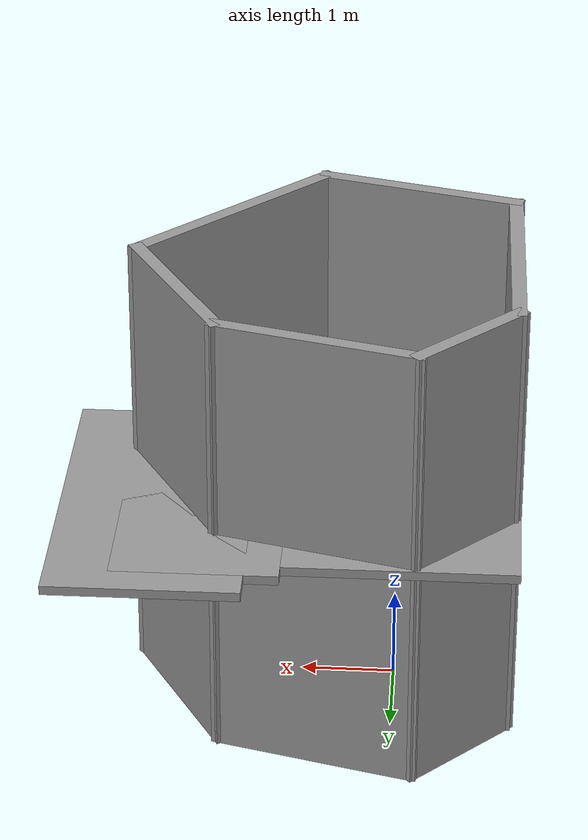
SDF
<?xml version='1.0'?>
<sdf version='1.6'>
  <model name='holes1'>
    <pose frame=''>0.755403 0.416373 0 0 -0 0</pose>
    <link name='Floor_0'>
      <pose frame=''>0 -0.47582 2.5 0 -0 0</pose>
      <visual name='Floor_0_Visual_0'>
        <pose frame=''>-0.857102 0 0.05 0 -0 0</pose>
        <geometry>
          <box>
            <size>2.40597 4.19628 0.1</size>
          </box>
        </geometry>
        <material>
          <script>
            <uri>file://media/materials/scripts/gazebo.material</uri>
            <name>Gazebo/Grey</name>
          </script>
          <ambient>1 1 1 1</ambient>
        </material>
        <meta>
          <layer>1</layer>
        </meta>
      </visual>
      <collision name='Floor_0_Collision_0'>
        <geometry>
          <box>
            <size>2.40597 4.19628 0.1</size>
          </box>
        </geometry>
        <pose frame=''>-0.857102 0 0.05 0 -0 0</pose>
      </collision>
      <visual name='Floor_0_Visual_1'>
        <pose frame=''>1.20298 -1.27418 0.05 0 -0 0</pose>
        <geometry>
          <box>
            <size>1.7142 2.64792 0.1</size>
          </box>
        </geometry>
        <material>
          <script>
            <uri>file://media/materials/scripts/gazebo.material</uri>
            <name>Gazebo/Grey</name>
          </script>
          <ambient>1 1 1 1</ambient>
        </material>
        <meta>
          <layer>1</layer>
        </meta>
      </visual>
      <collision name='Floor_0_Collision_1'>
        <geometry>
          <box>
            <size>1.7142 2.64792 0.1</size>
          </box>
        </geometry>
        <pose frame=''>1.20298 -1.27418 0.05 0 -0 0</pose>
      </collision>
	<visual name='Floor_0_Visual_3'>
        <pose frame=''>1.20298 1.27418 0.05 0 -0 0</pose>
        <geometry>
          <box>
            <size>1.7142 2 0.1</size>
          </box>
        </geometry>
        <material>
          <script>
            <uri>file://media/materials/scripts/gazebo.material</uri>
            <name>Gazebo/Grey</name>
          </script>
          <ambient>1 1 1 1</ambient>
        </material>
        <meta>
          <layer>1</layer>
        </meta>
      </visual>
      <collision name='Floor_0_Collision_3'>
        <geometry>
          <box>
            <size>1.7142 2 0.1</size>
          </box>
        </geometry>
        <pose frame=''>1.20298 1.27418 0.05 0 -0 0</pose>
      </collision>
      <visual name='Floor_0_Visual_2'>
        <pose frame=''>1.70298 0.823959 0.05 0 -0 0</pose>
        <geometry>
          <box>
            <size>2 3.54836 0.1</size>
          </box>
        </geometry>
        <material>
          <script>
            <uri>file://media/materials/scripts/gazebo.material</uri>
            <name>Gazebo/Grey</name>
          </script>
          <ambient>1 1 1 1</ambient>
        </material>
        <meta>
          <layer>1</layer>
        </meta>
      </visual>
      <collision name='Floor_0_Collision_2'>
        <geometry>
          <box>
            <size>1.714205 3.54836 0.1</size>
          </box>
        </geometry>
        <pose frame=''>2 0.823959 0.05 0 -0 0</pose>
      </collision>
    </link>

    <link name='Wall_0'>
      <collision name='Wall_0_Collision'>
        <geometry>
          <box>
            <size>2.25 0.15 2.5</size>
          </box>
        </geometry>
        <pose frame=''>0 0 1.25 0 -0 0</pose>
      </collision>
      <visual name='Wall_0_Visual'>
        <pose frame=''>0 0 1.25 0 -0 0</pose>
        <geometry>
          <box>
            <size>2.25 0.15 2.5</size>
          </box>
        </geometry>
        <material>
          <script>
            <uri>file://media/materials/scripts/gazebo.material</uri>
            <name>Gazebo/Grey</name>
          </script>
          <ambient>1 1 1 1</ambient>
        </material>
        <meta>
          <layer>0</layer>
        </meta>
      </visual>
      <pose frame=''>-0.89868 -2.19613 0 0 -0 -0.261799</pose>
    </link>
    <link name='Wall_1'>
      <collision name='Wall_1_Collision'>
        <geometry>
          <box>
            <size>2.75 0.15 2.5</size>
          </box>
        </geometry>
        <pose frame=''>0 0 1.25 0 -0 0</pose>
      </collision>
      <visual name='Wall_1_Visual'>
        <pose frame=''>0 0 1.25 0 -0 0</pose>
        <geometry>
          <box>
            <size>2.75 0.15 2.5</size>
          </box>
        </geometry>
        <material>
          <script>
            <uri>file://media/materials/scripts/gazebo.material</uri>
            <name>Gazebo/Grey</name>
          </script>
          <ambient>1 1 1 1</ambient>
        </material>
        <meta>
          <layer>0</layer>
        </meta>
      </visual>
      <pose frame=''>1.03478 -1.54865 0 0 -0 0.785398</pose>
    </link>
    <link name='Wall_10'>
      <collision name='Wall_10_Collision'>
        <geometry>
          <box>
            <size>2.25 0.15 2.5</size>
          </box>
        </geometry>
        <pose frame=''>0 0 1.25 0 -0 0</pose>
      </collision>
      <visual name='Wall_10_Visual'>
        <pose frame=''>0 0 1.25 0 -0 0</pose>
        <geometry>
          <box>
            <size>2.25 0.15 2.5</size>
          </box>
        </geometry>
        <material>
          <script>
            <uri>file://media/materials/scripts/gazebo.material</uri>
            <name>Gazebo/Grey</name>
          </script>
          <ambient>1 1 1 1</ambient>
        </material>
        <meta>
          <layer>1</layer>
        </meta>
      </visual>
      <pose frame=''>0.014797 1.24449 2.5 0 -0 2.87979</pose>
    </link>
    <link name='Wall_11'>
      <collision name='Wall_11_Collision'>
        <geometry>
          <box>
            <size>1.5 0.15 2.5</size>
          </box>
        </geometry>
        <pose frame=''>0 0 1.25 0 -0 0</pose>
      </collision>
      <visual name='Wall_11_Visual'>
        <pose frame=''>0 0 1.25 0 -0 0</pose>
        <geometry>
          <box>
            <size>1.5 0.15 2.5</size>
          </box>
        </geometry>
        <material>
          <script>
            <uri>file://media/materials/scripts/gazebo.material</uri>
            <name>Gazebo/Grey</name>
          </script>
          <ambient>1 1 1 1</ambient>
        </material>
        <meta>
          <layer>1</layer>
        </meta>
      </visual>
      <pose frame=''>-1.47672 1.03896 2.5 0 -0 -2.35619</pose>
    </link>
    <link name='Wall_12'>
      <collision name='Wall_12_Collision'>
        <geometry>
          <box>
            <size>2.63637 0.15 2.5</size>
          </box>
        </geometry>
        <pose frame=''>0 0 1.25 0 -0 0</pose>
      </collision>
      <visual name='Wall_12_Visual'>
        <pose frame=''>0 0 1.25 0 -0 0</pose>
        <geometry>
          <box>
            <size>2.63637 0.15 2.5</size>
          </box>
        </geometry>
        <material>
          <script>
            <uri>file://media/materials/scripts/gazebo.material</uri>
            <name>Gazebo/Grey</name>
          </script>
          <ambient>1 1 1 1</ambient>
        </material>
        <meta>
          <layer>1</layer>
        </meta>
      </visual>
      <pose frame=''>-1.93346 -0.681358 2.5 0 -0 -1.55426</pose>
    </link>
    <link name='Wall_2'>
      <collision name='Wall_2_Collision'>
        <geometry>
          <box>
            <size>2 0.15 2.5</size>
          </box>
        </geometry>
        <pose frame=''>0 0 1.25 0 -0 0</pose>
      </collision>
      <visual name='Wall_2_Visual'>
        <pose frame=''>0 0 1.25 0 -0 0</pose>
        <geometry>
          <box>
            <size>2 0.15 2.5</size>
          </box>
        </geometry>
        <material>
          <script>
            <uri>file://media/materials/scripts/gazebo.material</uri>
            <name>Gazebo/Grey</name>
          </script>
          <ambient>1 1 1 1</ambient>
        </material>
        <meta>
          <layer>0</layer>
        </meta>
      </visual>
      <pose frame=''>1.49152 0.171658 0 0 -0 2.0944</pose>
    </link>
    <link name='Wall_3'>
      <collision name='Wall_3_Collision'>
        <geometry>
          <box>
            <size>2.25 0.15 2.5</size>
          </box>
        </geometry>
        <pose frame=''>0 0 1.25 0 -0 0</pose>
      </collision>
      <visual name='Wall_3_Visual'>
        <pose frame=''>0 0 1.25 0 -0 0</pose>
        <geometry>
          <box>
            <size>2.25 0.15 2.5</size>
          </box>
        </geometry>
        <material>
          <script>
            <uri>file://media/materials/scripts/gazebo.material</uri>
            <name>Gazebo/Grey</name>
          </script>
          <ambient>1 1 1 1</ambient>
        </material>
        <meta>
          <layer>0</layer>
        </meta>
      </visual>
      <pose frame=''>0.014797 1.24449 0 0 -0 2.87979</pose>
    </link>
    <link name='Wall_4'>
      <collision name='Wall_4_Collision'>
        <geometry>
          <box>
            <size>1.5 0.15 2.5</size>
          </box>
        </geometry>
        <pose frame=''>0 0 1.25 0 -0 0</pose>
      </collision>
      <visual name='Wall_4_Visual'>
        <pose frame=''>0 0 1.25 0 -0 0</pose>
        <geometry>
          <box>
            <size>1.5 0.15 2.5</size>
          </box>
        </geometry>
        <material>
          <script>
            <uri>file://media/materials/scripts/gazebo.material</uri>
            <name>Gazebo/Grey</name>
          </script>
          <ambient>1 1 1 1</ambient>
        </material>
        <meta>
          <layer>0</layer>
        </meta>
      </visual>
      <pose frame=''>-1.47672 1.03896 0 0 -0 -2.35619</pose>
    </link>
    <link name='Wall_5'>
      <collision name='Wall_5_Collision'>
        <geometry>
          <box>
            <size>2.63637 0.15 2.5</size>
          </box>
        </geometry>
        <pose frame=''>0 0 1.25 0 -0 0</pose>
      </collision>
      <visual name='Wall_5_Visual'>
        <pose frame=''>0 0 1.25 0 -0 0</pose>
        <geometry>
          <box>
            <size>2.63637 0.15 2.5</size>
          </box>
        </geometry>
        <material>
          <script>
            <uri>file://media/materials/scripts/gazebo.material</uri>
            <name>Gazebo/Grey</name>
          </script>
          <ambient>1 1 1 1</ambient>
        </material>
        <meta>
          <layer>0</layer>
        </meta>
      </visual>
      <pose frame=''>-1.93346 -0.681358 0 0 -0 -1.55426</pose>
    </link>
    <link name='Wall_7'>
      <collision name='Wall_7_Collision'>
        <geometry>
          <box>
            <size>2.25 0.15 2.5</size>
          </box>
        </geometry>
        <pose frame=''>0 0 1.25 0 -0 0</pose>
      </collision>
      <visual name='Wall_7_Visual'>
        <pose frame=''>0 0 1.25 0 -0 0</pose>
        <geometry>
          <box>
            <size>2.25 0.15 2.5</size>
          </box>
        </geometry>
        <material>
          <script>
            <uri>file://media/materials/scripts/gazebo.material</uri>
            <name>Gazebo/Grey</name>
          </script>
          <ambient>1 1 1 1</ambient>
        </material>
        <meta>
          <layer>1</layer>
        </meta>
      </visual>
      <pose frame=''>-0.89868 -2.19613 2.5 0 -0 -0.261799</pose>
    </link>
    <link name='Wall_8'>
      <collision name='Wall_8_Collision'>
        <geometry>
          <box>
            <size>2.75 0.15 2.5</size>
          </box>
        </geometry>
        <pose frame=''>0 0 1.25 0 -0 0</pose>
      </collision>
      <visual name='Wall_8_Visual'>
        <pose frame=''>0 0 1.25 0 -0 0</pose>
        <geometry>
          <box>
            <size>2.75 0.15 2.5</size>
          </box>
        </geometry>
        <material>
          <script>
            <uri>file://media/materials/scripts/gazebo.material</uri>
            <name>Gazebo/Grey</name>
          </script>
          <ambient>1 1 1 1</ambient>
        </material>
        <meta>
          <layer>1</layer>
        </meta>
      </visual>
      <pose frame=''>1.03478 -1.54865 2.5 0 -0 0.785398</pose>
    </link>
    <link name='Wall_9'>
      <collision name='Wall_9_Collision'>
        <geometry>
          <box>
            <size>2 0.15 2.5</size>
          </box>
        </geometry>
        <pose frame=''>0 0 1.25 0 -0 0</pose>
      </collision>
      <visual name='Wall_9_Visual'>
        <pose frame=''>0 0 1.25 0 -0 0</pose>
        <geometry>
          <box>
            <size>2 0.15 2.5</size>
          </box>
        </geometry>
        <material>
          <script>
            <uri>file://media/materials/scripts/gazebo.material</uri>
            <name>Gazebo/Grey</name>
          </script>
          <ambient>1 1 1 1</ambient>
        </material>
        <meta>
          <layer>1</layer>
        </meta>
      </visual>
      <pose frame=''>1.49152 0.171658 2.5 0 -0 2.0944</pose>
    </link>
    <static>1</static>
  </model>
</sdf>
